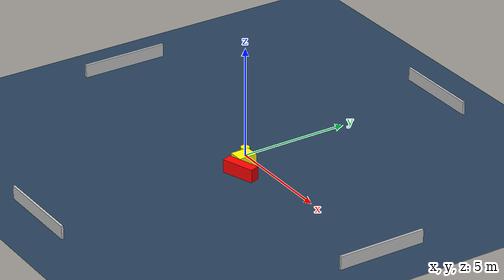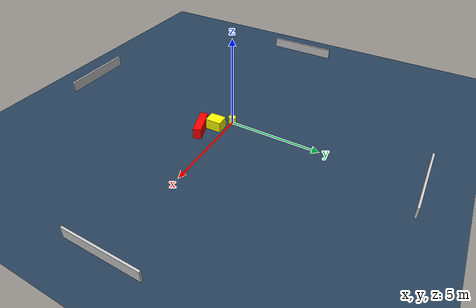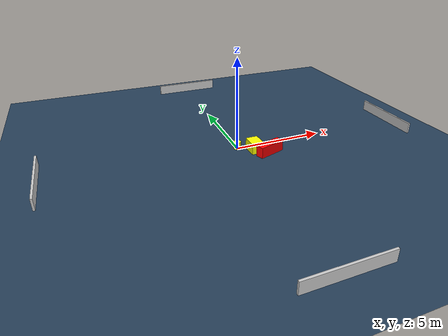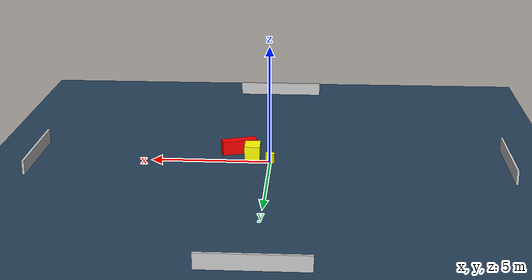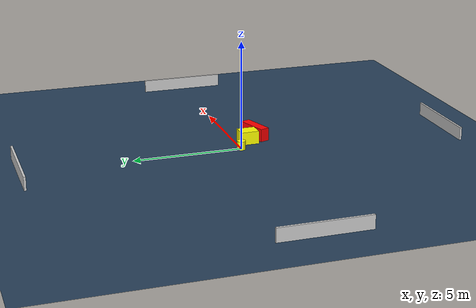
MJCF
<?xml version="1.0" ?>
<mujoco model="generated_environment">
  <option timestep="0.01" integrator="RK4" cone="elliptic"/>
  <default>
    <geom density="1"/>
  </default>
  <asset>
    <texture builtin="gradient" height="3072" name="skybox" rgb1="0.3 0.5 0.7" rgb2="0 0 0" type="skybox" width="512"/>
    <texture builtin="checker" height="300" name="groundplane" rgb1="0.2 0.3 0.4" rgb2="0.1 0.2 0.3" type="2d" width="300"/>
    <material name="groundplane" reflectance="0.2" texrepeat="5 5" texture="groundplane"/>
  </asset>
  <worldbody>
    <light dir="0 0 -1" directional="true" pos="0 0 1.5"/>
    <geom condim="3" friction="0.5 0.005 0.001" material="groundplane" name="floor" pos="0 0 0" size="0 0 0.05" type="plane"/>
    <body name="walls">
      <geom name="wall_1" condim="4" pos="-10.0 0.0 0.3" rgba="0.800000011920929 0.800000011920929 0.800000011920929 1.0" size="0.05 2.0 0.3" type="box"/>
      <geom name="wall_2" condim="4" pos="10.0 0.0 0.3" rgba="0.800000011920929 0.800000011920929 0.800000011920929 1.0" size="0.05 2.0 0.3" type="box"/>
      <geom name="wall_3" condim="4" pos="0.0 -10.0 0.3" rgba="0.800000011920929 0.800000011920929 0.800000011920929 1.0" size="2.0 0.05 0.3" type="box"/>
      <geom name="wall_4" condim="4" pos="0.0 10.0 0.3" rgba="0.800000011920929 0.800000011920929 0.800000011920929 1.0" size="2.0 0.05 0.3" type="box"/>
    </body>
    <body name="robot">
      <joint name="joint_x" type="slide" pos="0 0 0" axis="1 0 0"/>
      <joint name="joint_y" type="slide" pos="0 0 0" axis="0 1 0"/>
      <geom name="robot" type="cylinder" pos="0.0 0.0 0.2" size="0.2 0.2 0.0" mass="5.0" friction="1.0 0.005 0.0001" condim="4" rgba="1.0 1.0 0.0 1.0"/>
    </body>
    <body name="obstacle_1_movable">
      <geom name="obstacle_1_movable" condim="4" pos="0.7763427348475946 -0.5683920078891184 0.3" euler="0 0 271.2653309013496" friction="0.0 0.005 0.001" rgba="1.0 1.0 0.0 1.0" size="0.42355101169158915 0.32799284877461543 0.3" type="box" mass="0.1"/>
      <joint type="free"/>
    </body>
    <body name="obstacle_2_static">
      <geom name="obstacle_2_static" condim="4" pos="1.4021212561422387 -1.1322128552749995 0.3" euler="0 0 18.5905035687027" friction="0.0 0.005 0.001" rgba="1.0 0.0 0.0 1.0" size="0.7542488933528877 0.21940232760160833 0.3" type="box"/>
    </body>
  </worldbody>
  <actuator>
    <motor name="actuator_x" joint="joint_x" gear="1" ctrlrange="-1 1"/>
    <motor name="actuator_y" joint="joint_y" gear="1" ctrlrange="-1 1"/>
  </actuator>
</mujoco>
